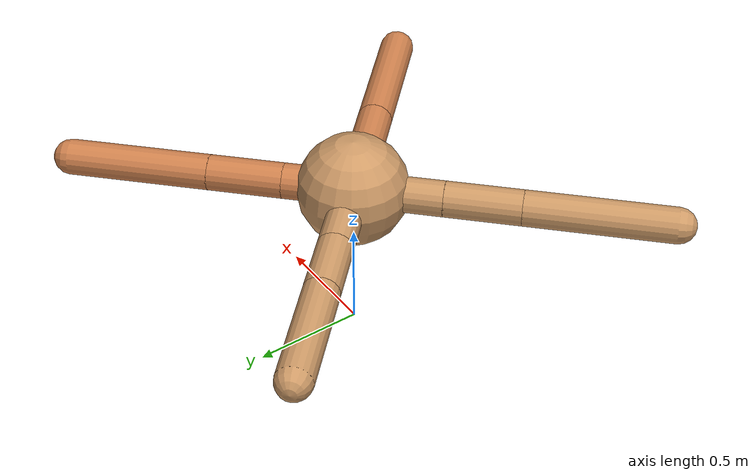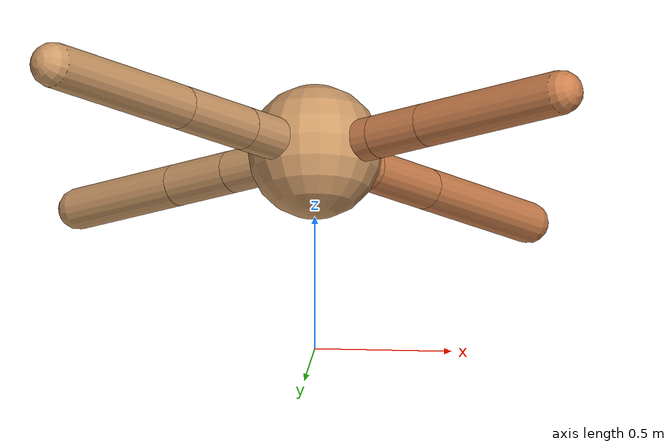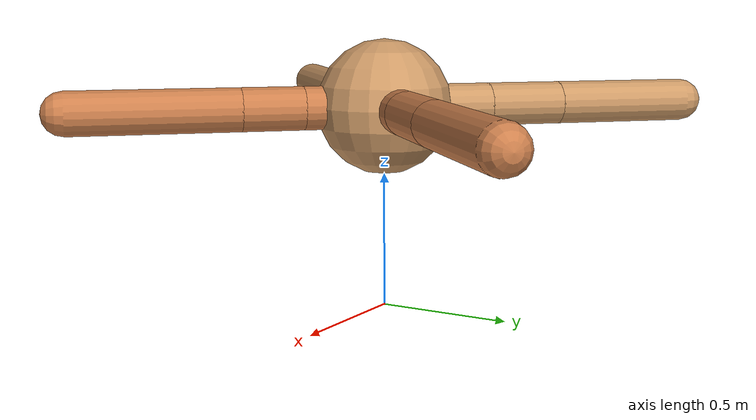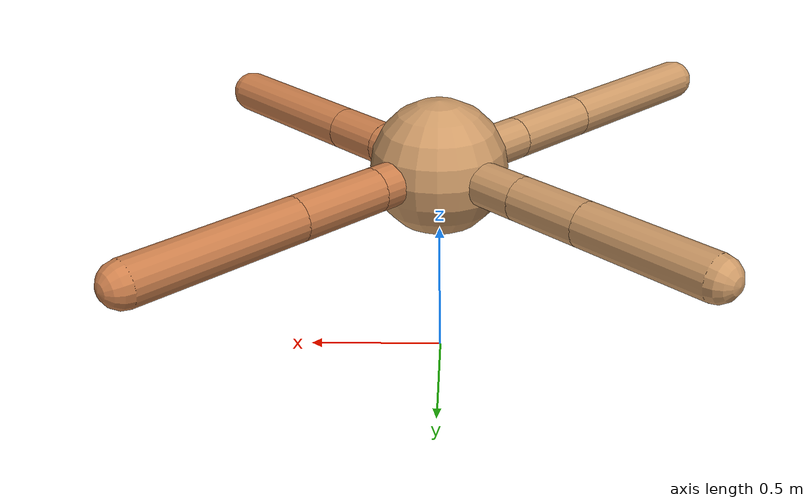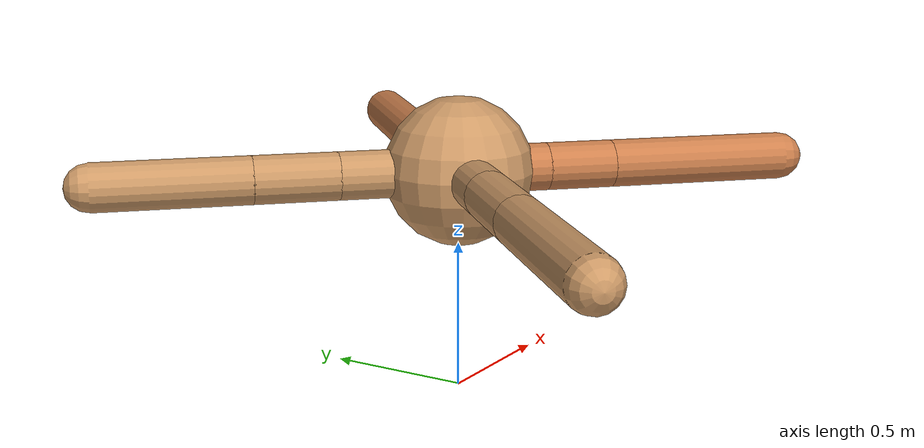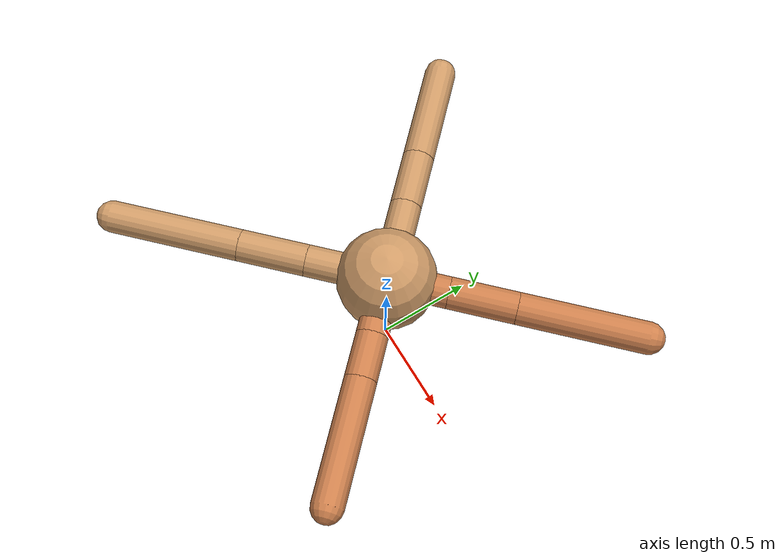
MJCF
<mujoco model="ant">
  <compiler angle="degree" coordinate="local" inertiafromgeom="true" />
  <option integrator="RK4" timestep="0.01" />
  <custom>
    <numeric data="0.0 0.0 0.55 1.0 0.0 0.0 0.0 0.0 1.0 0.0 -1.0 0.0 -1.0 0.0 1.0" name="init_qpos" />
  </custom>
  <default>
    <joint armature="1" damping="1" limited="true" />
    <geom conaffinity="0" condim="3" density="5.0" friction="1.5 0.1 0.1" margin="0.01" rgba="0.8 0.6 0.4 1" />
  </default>
  <worldbody>
    <body name="torso" pos="0 0 0.75">
      <geom name="torso_geom" pos="0 0 0" size="0.25" type="sphere" />

      <body name="front_left_leg" pos="0 0 0">
        <geom fromto="0.0 0.0 0.0 0.2190841865026407 0.2190841865026407 0.0" name="aux_1_geom" size="0.08" type="capsule" rgba=".8 .5 .3 1" />
        <body name="aux_1" pos="0.2190841865026407 0.2190841865026407 0.0">
          <joint axis="0 0 1" name="hip_1" pos="0.0 0.0 0.0" range="-40 40" type="hinge" />
          <geom fromto="0.0 0.0 0.0 0.23812922838498896 0.23812922838498896 0.0" name="left_leg_geom" size="0.08" type="capsule" rgba=".8 .5 .3 1" />
          <body pos="0.23812922838498896 0.23812922838498896 0.0" name="front_left_foot">
            <joint axis="-1 1 0" name="ankle_1" pos="0.0 0.0 0.0" range="30 100" type="hinge" />
            <geom fromto="0.0 0.0 0.0 0.45079647844341636 0.45079647844341636 0.0" name="left_ankle_geom" size="0.08" type="capsule" rgba=".8 .5 .3 1" />
          </body>
        </body>
      </body>
      <body name="front_right_leg" pos="0 0 0">
        <geom fromto="0.0 0.0 0.0 -0.2847130618152363 0.2847130618152363 0.0" name="aux_2_geom" size="0.08" type="capsule" />
        <body name="aux_2" pos="-0.2847130618152363 0.2847130618152363 0.0">
          <joint axis="0 0 1" name="hip_2" pos="0.0 0.0 0.0" range="-40 40" type="hinge" />
          <geom fromto="0.0 0.0 0.0 -0.19854840159415624 0.19854840159415624 0.0" name="right_leg_geom" size="0.08" type="capsule" />
          <body pos="-0.19854840159415624 0.19854840159415624 0.0" name="front_right_foot">
            <joint axis="1 1 0" name="ankle_2" pos="0.0 0.0 0.0" range="-100 -30" type="hinge" />
            <geom fromto="0.0 0.0 0.0 -0.3626437318596202 0.3626437318596202 0.0" name="right_ankle_geom" size="0.08" type="capsule" />
          </body>
        </body>
      </body>
      <body name="left_back_leg" pos="0 0 0">
        <geom fromto="0.0 0.0 0.0 -0.28434966446044124 -0.28434966446044124 0.0" name="aux_3_geom" size="0.08" type="capsule" />
        <body name="aux_3" pos="-0.28434966446044124 -0.28434966446044124 0.0">
          <joint axis="0 0 1" name="hip_3" pos="0.0 0.0 0.0" range="-40 40" type="hinge" />
          <geom fromto="0.0 0.0 0.0 -0.24169981290738105 -0.24169981290738105 0.0" name="back_leg_geom" size="0.08" type="capsule" />
          <body pos="-0.24169981290738105 -0.24169981290738105 0.0" name="left_back_foot">
            <joint axis="-1 1 0" name="ankle_3" pos="0.0 0.0 0.0" range="-100 -30" type="hinge" />
            <geom fromto="0.0 0.0 0.0 -0.46735771964432066 -0.46735771964432066 0.0" name="third_ankle_geom" size="0.08" type="capsule" />
          </body>
        </body>
      </body>
      <body name="right_back_leg" pos="0 0 0">
        <geom fromto="0.0 0.0 0.0 0.21401463180052543 -0.21401463180052543 0.0" name="aux_4_geom" size="0.08" type="capsule" rgba=".8 .5 .3 1" />
        <body name="aux_4" pos="0.21401463180052543 -0.21401463180052543 0.0">
          <joint axis="0 0 1" name="hip_4" pos="0.0 0.0 0.0" range="-40 40" type="hinge" />
          <geom fromto="0.0 0.0 0.0 0.16071814929719314 -0.16071814929719314 0.0" name="rightback_leg_geom" size="0.08" type="capsule" rgba=".8 .5 .3 1" />
          <body pos="0.16071814929719314 -0.16071814929719314 0.0" name="right_back_foot">
            <joint axis="1 1 0" name="ankle_4" pos="0.0 0.0 0.0" range="30 100" type="hinge" />
            <geom fromto="0.0 0.0 0.0 0.4345095184395746 -0.4345095184395746 0.0" name="fourth_ankle_geom" size="0.08" type="capsule" rgba=".8 .5 .3 1" />
          </body>
        </body>
      </body>
    </body>
  </worldbody>
  <actuator>
    <motor ctrllimited="true" ctrlrange="-1.0 1.0" joint="hip_4" gear="150" />
    <motor ctrllimited="true" ctrlrange="-1.0 1.0" joint="ankle_4" gear="150" />
    <motor ctrllimited="true" ctrlrange="-1.0 1.0" joint="hip_1" gear="150" />
    <motor ctrllimited="true" ctrlrange="-1.0 1.0" joint="ankle_1" gear="150" />
    <motor ctrllimited="true" ctrlrange="-1.0 1.0" joint="hip_2" gear="150" />
    <motor ctrllimited="true" ctrlrange="-1.0 1.0" joint="ankle_2" gear="150" />
    <motor ctrllimited="true" ctrlrange="-1.0 1.0" joint="hip_3" gear="150" />
    <motor ctrllimited="true" ctrlrange="-1.0 1.0" joint="ankle_3" gear="150" />
  </actuator>
</mujoco>
